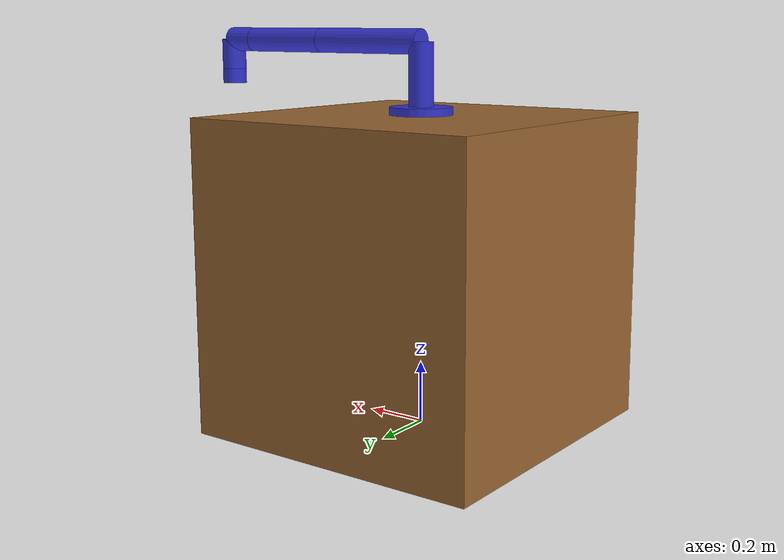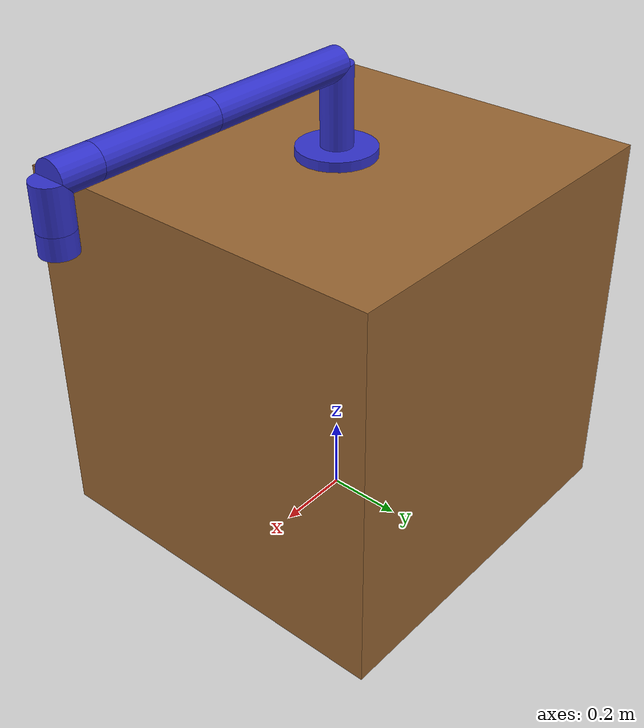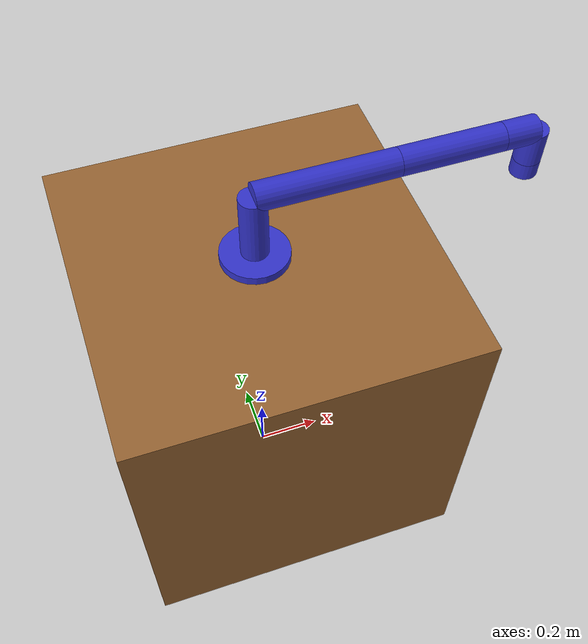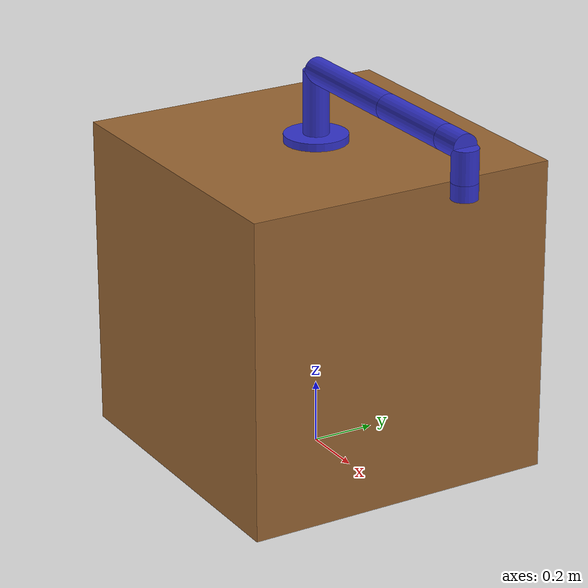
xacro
<?xml version="1.0"?>
<robot xmlns:xacro="http://www.ros.org/wiki/xacro" name="my_6dof_arm">

    <!-- Materials -->
    <material name="blue"><color rgba="0.2 0.2 0.8 1.0"/></material>
    <material name="wood"><color rgba="0.6 0.4 0.2 1.0"/></material>

    <!-- Inertia Macro (Required for Gazebo Physics) -->
    <xacro:macro name="cylinder_inertia" params="m r h">
        <inertial>
            <mass value="${m}"/>
            <inertia ixx="${m*(3*r*r+h*h)/12}" ixy="0" ixz="0" iyy="${m*(3*r*r+h*h)/12}" iyz="0" izz="${m*r*r/2}"/>
        </inertial>
    </xacro:macro>

    <!-- World and Table -->
    <link name="world"/>

    <joint name="world_to_table" type="fixed">
        <parent link="world"/>
        <child link="table"/>
        <origin xyz="0 0 0.5" rpy="0 0 0"/>
    </joint>

    <link name="table">
        <visual><geometry><box size="1.0 1.0 1.0"/></geometry><material name="wood"/></visual>
        <collision><geometry><box size="1.0 1.0 1.0"/></geometry></collision>
        <inertial><mass value="100.0"/><inertia ixx="1" ixy="0" ixz="0" iyy="1" iyz="0" izz="1"/></inertial>
    </link>

    <!-- Arm Base -->
    <joint name="table_to_base" type="fixed">
        <parent link="table"/>
        <child link="base_link"/>
        <origin xyz="0 0 0.5" rpy="0 0 0"/>
    </joint>

    <link name="base_link">
        <visual><geometry><cylinder radius="0.1" length="0.05"/></geometry><material name="blue"/></visual>
        <collision><geometry><cylinder radius="0.1" length="0.05"/></geometry></collision>
        <xacro:cylinder_inertia m="1.0" r="0.1" h="0.05"/>
    </link>

    <!-- Macro for creating arm links and joints to save space -->
    <xacro:macro name="arm_joint" params="name parent child xyz rpy axis length">
        <joint name="${name}" type="revolute">
            <parent link="${parent}"/>
            <child link="${child}"/>
            <origin xyz="${xyz}" rpy="${rpy}"/>
            <axis xyz="${axis}"/>
            <limit lower="-3.14" upper="3.14" effort="100" velocity="1.0"/>
        </joint>

        <link name="${child}">
            <visual>
                <origin xyz="0 0 ${length/2}" rpy="0 0 0"/>
                <geometry><cylinder radius="0.04" length="${length}"/></geometry>
                <material name="blue"/>
            </visual>
            <collision>
                <origin xyz="0 0 ${length/2}" rpy="0 0 0"/>
                <geometry><cylinder radius="0.04" length="${length}"/></geometry>
            </collision>
            <!-- Shift inertia origin to match visual center -->
            <inertial>
                <origin xyz="0 0 ${length/2}" rpy="0 0 0"/>
                <mass value="1.0"/>
                <inertia ixx="${1.0*(3*0.04*0.04+length*length)/12}" ixy="0" ixz="0" iyy="${1.0*(3*0.04*0.04+length*length)/12}" iyz="0" izz="${1.0*0.04*0.04/2}"/>
            </inertial>
        </link>
    </xacro:macro>

    <!-- The 6 DOF Joints -->
    <xacro:arm_joint name="joint1" parent="base_link" child="link1" xyz="0 0 0.025" rpy="0 0 0" axis="0 0 1" length="0.2"/>
    <xacro:arm_joint name="joint2" parent="link1" child="link2" xyz="0 0 0.2" rpy="0 1.57 0" axis="0 1 0" length="0.4"/>
    <xacro:arm_joint name="joint3" parent="link2" child="link3" xyz="0 0 0.4" rpy="0 0 0" axis="0 1 0" length="0.3"/>
    <xacro:arm_joint name="joint4" parent="link3" child="link4" xyz="0 0 0.3" rpy="0 0 0" axis="0 0 1" length="0.1"/>
    <xacro:arm_joint name="joint5" parent="link4" child="link5" xyz="0 0 0.1" rpy="0 1.57 0" axis="0 1 0" length="0.1"/>
    <xacro:arm_joint name="joint6" parent="link5" child="link6" xyz="0 0 0.1" rpy="0 0 0" axis="0 0 1" length="0.05"/>

    <!-- ROS 2 Control Tag for Gazebo Harmonic -->
    <ros2_control name="GazeboSimSystem" type="system">
        <hardware>
            <plugin>gz_ros2_control/GazeboSimSystem</plugin>
        </hardware>
        <xacro:macro name="ctrl_joint" params="name">
            <joint name="${name}">
                <command_interface name="position"/>
                <state_interface name="position"/>
                <state_interface name="velocity"/>
            </joint>
        </xacro:macro>
        <xacro:ctrl_joint name="joint1"/>
        <xacro:ctrl_joint name="joint2"/>
        <xacro:ctrl_joint name="joint3"/>
        <xacro:ctrl_joint name="joint4"/>
        <xacro:ctrl_joint name="joint5"/>
        <xacro:ctrl_joint name="joint6"/>
    </ros2_control>

    <gazebo>
        <plugin filename="gz_ros2_control-system" name="gz_ros2_control::GazeboSimROS2ControlPlugin">
            <parameters>$(find my_robot_arm)/config/controllers.yaml</parameters>
        </plugin>
    </gazebo>

</robot>
